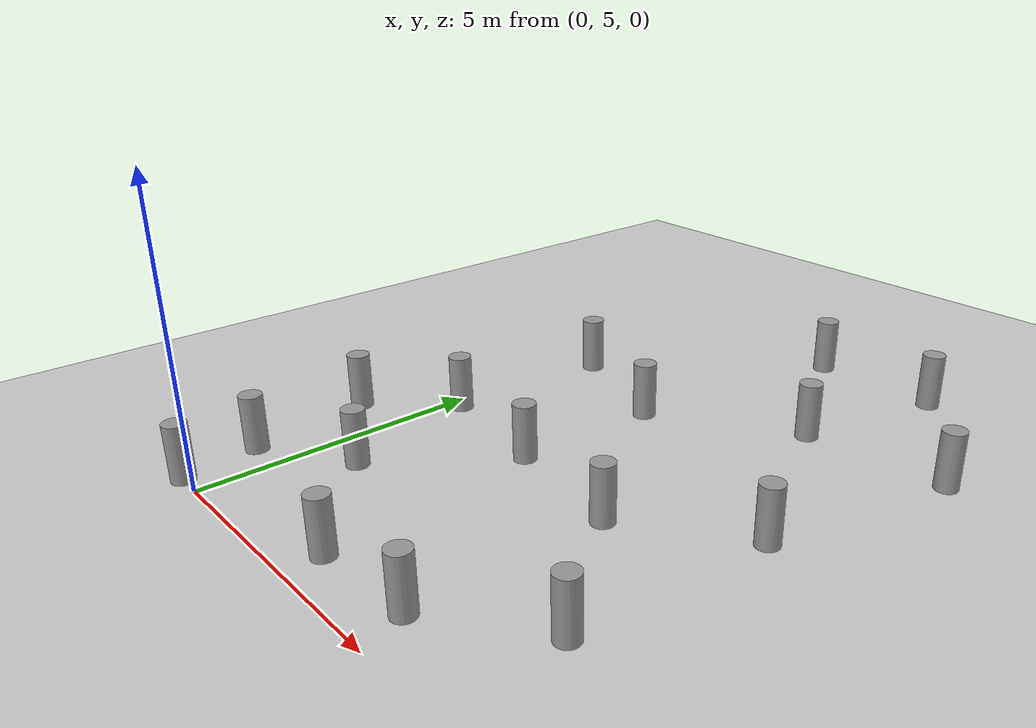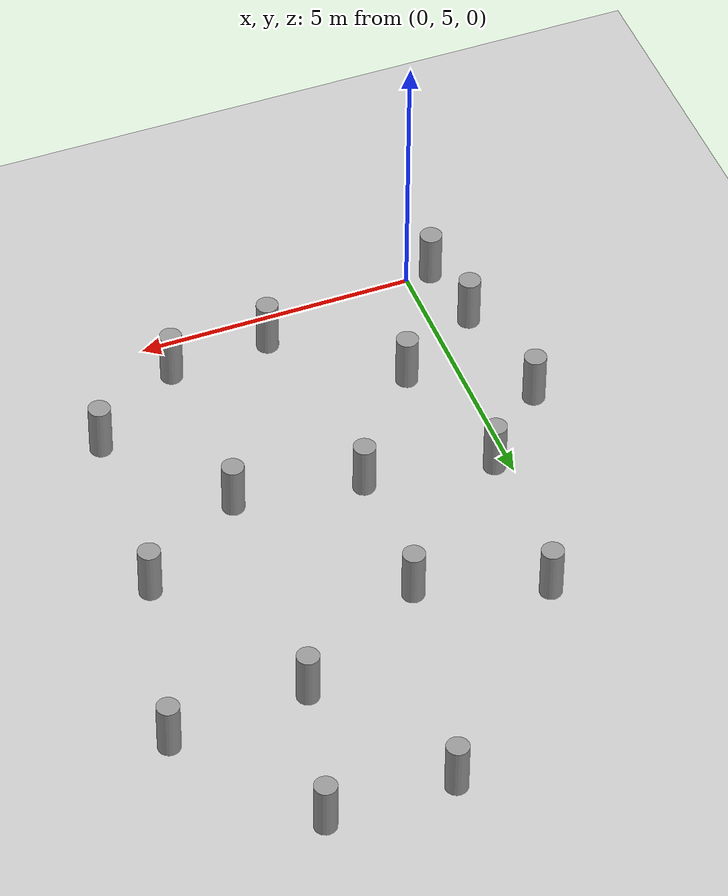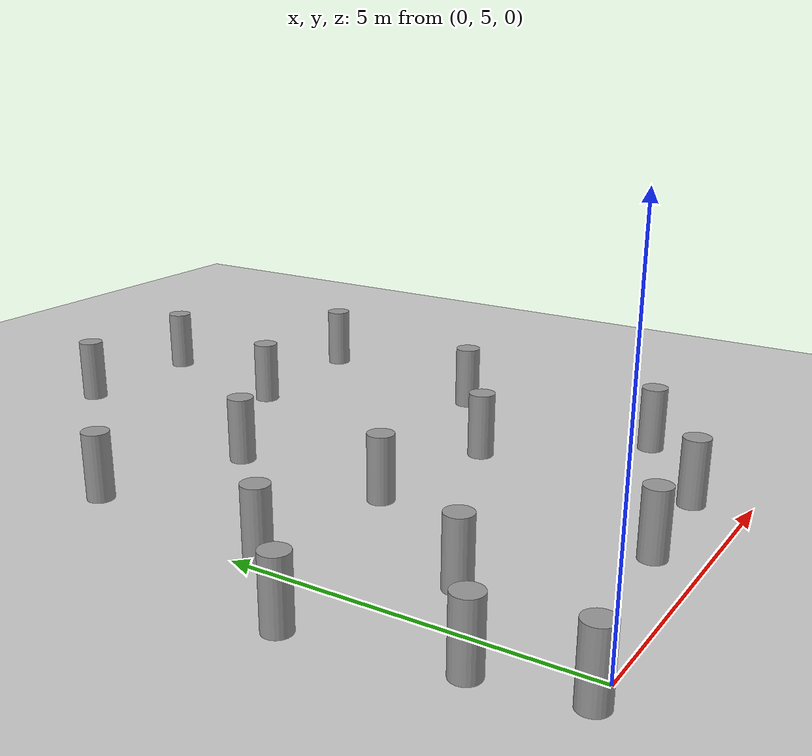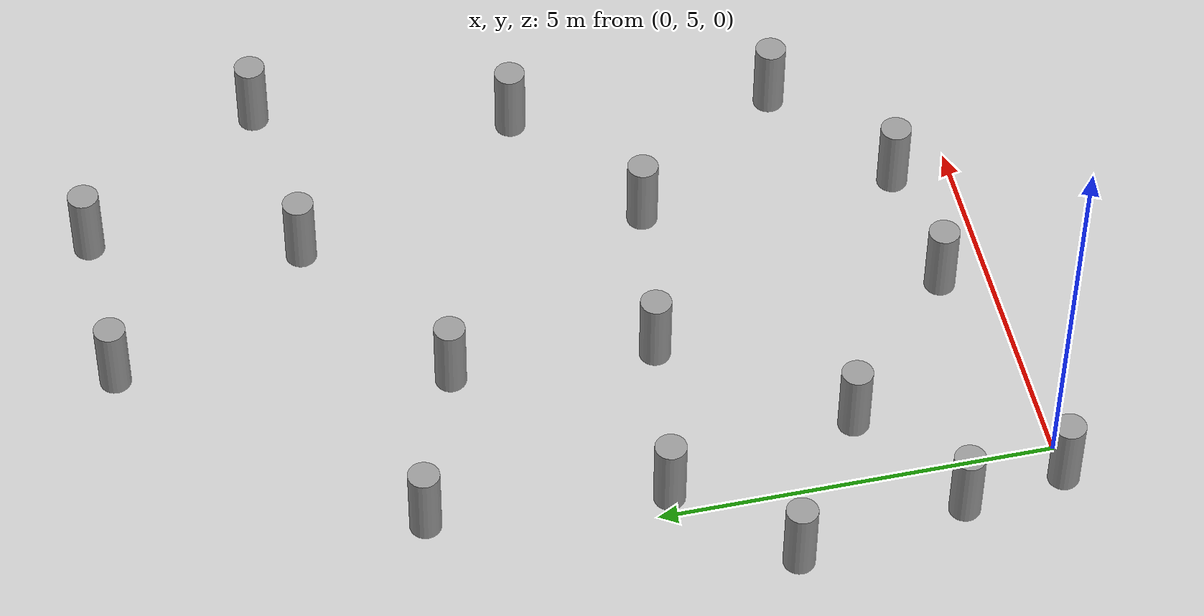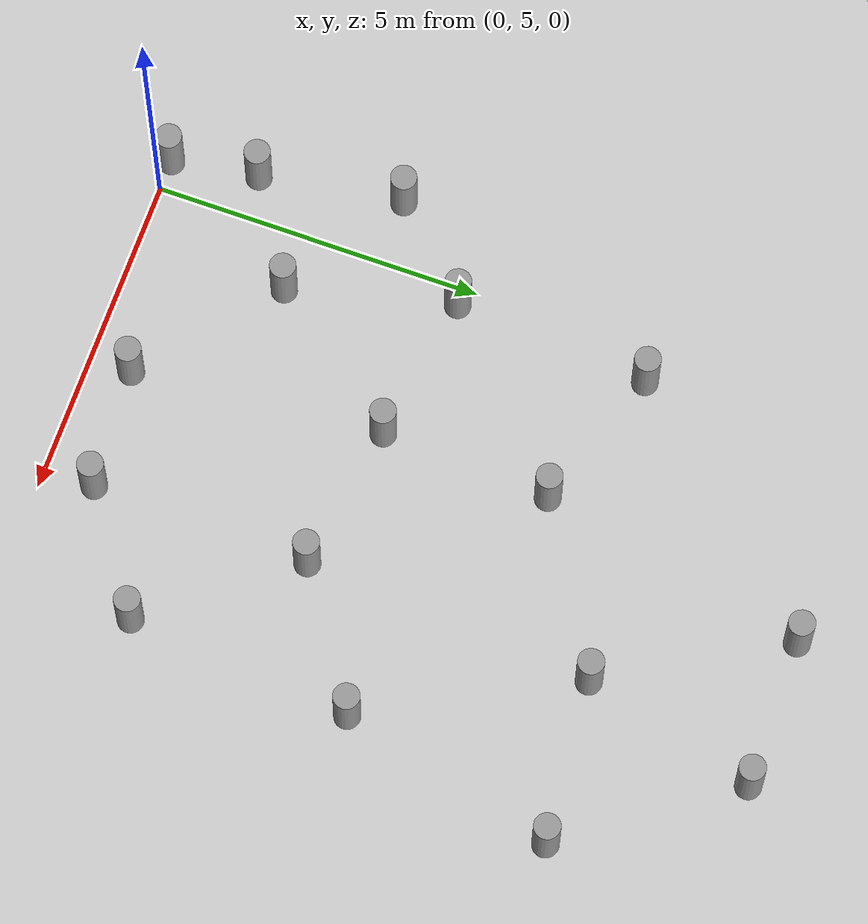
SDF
<sdf version="1.7">
 <world name="default">
  <model name="ground_plane">
   <static>1</static>
   <link name="link">
    <collision name="collision">
     <geometry><plane><normal>0 0 1</normal><size>100 100</size></plane></geometry>
     <surface><friction><ode><mu>100</mu><mu2>50</mu2></ode></friction></surface>
    </collision>
    <visual name="visual">
     <cast_shadows>0</cast_shadows>
     <geometry><plane><normal>0 0 1</normal><size>100 100</size></plane></geometry>
     <material>
      <script><uri>file://media/materials/scripts/gazebo.material</uri><name>Gazebo/Grey</name></script>
     </material>
    </visual>
   </link>
  </model>
  <model name="unit_cylinder_clone_0">
   <pose>4.78695 9.09994 0.499993 0 -0 4e-06</pose>
   <link name="link">
    <inertial>
     <mass>1</mass>
     <inertia><ixx>0.145833</ixx><ixy>0</ixy><ixz>0</ixz><iyy>0.145833</iyy><iyz>0</iyz><izz>0.125</izz></inertia>
    </inertial>
    <collision name="collision">
     <geometry><cylinder><radius>0.19793</radius><length>1</length></cylinder></geometry>
    </collision>
    <visual name="visual">
     <geometry><cylinder><radius>0.19793</radius><length>1</length></cylinder></geometry>
     <material>
      <script><name>Gazebo/Grey</name><uri>file://media/materials/scripts/gazebo.material</uri></script>
     </material>
    </visual>
   </link>
  </model>
  <model name="unit_cylinder_clone_1">
   <pose>2.66479 12.0412 0.499997 0 -0 4e-06</pose>
   <link name="link">
    <inertial>
     <mass>1</mass>
     <inertia><ixx>0.145833</ixx><ixy>0</ixy><ixz>0</ixz><iyy>0.145833</iyy><iyz>0</iyz><izz>0.125</izz></inertia>
    </inertial>
    <collision name="collision">
     <geometry><cylinder><radius>0.19793</radius><length>1</length></cylinder></geometry>
    </collision>
    <visual name="visual">
     <geometry><cylinder><radius>0.19793</radius><length>1</length></cylinder></geometry>
     <material>
      <script><name>Gazebo/Grey</name><uri>file://media/materials/scripts/gazebo.material</uri></script>
     </material>
    </visual>
   </link>
  </model>
  <model name="unit_cylinder_clone_2">
   <pose>5.09572 13.5123 0.499993 0 -0 4e-06</pose>
   <link name="link">
    <inertial>
     <mass>1</mass>
     <inertia><ixx>0.145833</ixx><ixy>0</ixy><ixz>0</ixz><iyy>0.145833</iyy><iyz>0</iyz><izz>0.125</izz></inertia>
    </inertial>
    <collision name="collision">
     <geometry><cylinder><radius>0.19793</radius><length>1</length></cylinder></geometry>
    </collision>
    <visual name="visual">
     <geometry><cylinder><radius>0.19793</radius><length>1</length></cylinder></geometry>
     <material>
      <script><name>Gazebo/Grey</name><uri>file://media/materials/scripts/gazebo.material</uri></script>
     </material>
    </visual>
   </link>
  </model>
  <model name="unit_cylinder_clone_3">
   <pose>3.5408 16.1391 0.499997 0 -0 4e-06</pose>
   <link name="link">
    <inertial>
     <mass>1</mass>
     <inertia><ixx>0.145833</ixx><ixy>0</ixy><ixz>0</ixz><iyy>0.145833</iyy><iyz>0</iyz><izz>0.125</izz></inertia>
    </inertial>
    <collision name="collision">
     <geometry><cylinder><radius>0.19793</radius><length>1</length></cylinder></geometry>
    </collision>
    <visual name="visual">
     <geometry><cylinder><radius>0.19793</radius><length>1</length></cylinder></geometry>
     <material>
      <script><name>Gazebo/Grey</name><uri>file://media/materials/scripts/gazebo.material</uri></script>
     </material>
    </visual>
   </link>
  </model>
  <model name="unit_cylinder_clone_4">
   <pose>0.487119 12.7888 0.499993 0 -0 4e-06</pose>
   <link name="link">
    <inertial>
     <mass>1</mass>
     <inertia><ixx>0.145833</ixx><ixy>0</ixy><ixz>0</ixz><iyy>0.145833</iyy><iyz>0</iyz><izz>0.125</izz></inertia>
    </inertial>
    <collision name="collision">
     <geometry><cylinder><radius>0.19793</radius><length>1</length></cylinder></geometry>
    </collision>
    <visual name="visual">
     <geometry><cylinder><radius>0.19793</radius><length>1</length></cylinder></geometry>
     <material>
      <script><name>Gazebo/Grey</name><uri>file://media/materials/scripts/gazebo.material</uri></script>
     </material>
    </visual>
   </link>
  </model>
  <model name="unit_cylinder_clone_5">
   <pose>0.274245 9.79924 0.499997 0 -0 4e-06</pose>
   <link name="link">
    <inertial>
     <mass>1</mass>
     <inertia><ixx>0.145833</ixx><ixy>0</ixy><ixz>0</ixz><iyy>0.145833</iyy><iyz>0</iyz><izz>0.125</izz></inertia>
    </inertial>
    <collision name="collision">
     <geometry><cylinder><radius>0.19793</radius><length>1</length></cylinder></geometry>
    </collision>
    <visual name="visual">
     <geometry><cylinder><radius>0.19793</radius><length>1</length></cylinder></geometry>
     <material>
      <script><name>Gazebo/Grey</name><uri>file://media/materials/scripts/gazebo.material</uri></script>
     </material>
    </visual>
   </link>
  </model>
  <model name="unit_cylinder_clone_6">
   <pose>-1 8.49556 0.499993 0 -0 4e-06</pose>
   <link name="link">
    <inertial>
     <mass>1</mass>
     <inertia><ixx>0.145833</ixx><ixy>0</ixy><ixz>0</ixz><iyy>0.145833</iyy><iyz>0</iyz><izz>0.125</izz></inertia>
    </inertial>
    <collision name="collision">
     <geometry><cylinder><radius>0.19793</radius><length>1</length></cylinder></geometry>
    </collision>
    <visual name="visual">
     <geometry><cylinder><radius>0.19793</radius><length>1</length></cylinder></geometry>
     <material>
      <script><name>Gazebo/Grey</name><uri>file://media/materials/scripts/gazebo.material</uri></script>
     </material>
    </visual>
   </link>
  </model>
  <model name="unit_cylinder_clone_7">
   <pose>6.74765 10.429 0.499997 0 -0 4e-06</pose>
   <link name="link">
    <inertial>
     <mass>1</mass>
     <inertia><ixx>0.145833</ixx><ixy>0</ixy><ixz>0</ixz><iyy>0.145833</iyy><iyz>0</iyz><izz>0.125</izz></inertia>
    </inertial>
    <collision name="collision">
     <geometry><cylinder><radius>0.19793</radius><length>1</length></cylinder></geometry>
    </collision>
    <visual name="visual">
     <geometry><cylinder><radius>0.19793</radius><length>1</length></cylinder></geometry>
     <material>
      <script><name>Gazebo/Grey</name><uri>file://media/materials/scripts/gazebo.material</uri></script>
     </material>
    </visual>
   </link>
  </model>
  <model name="unit_cylinder_clone_8">
   <pose>7.57568 13.7201 0.499993 0 -0 4e-06</pose>
   <link name="link">
    <inertial>
     <mass>1</mass>
     <inertia><ixx>0.145833</ixx><ixy>0</ixy><ixz>0</ixz><iyy>0.145833</iyy><iyz>0</iyz><izz>0.125</izz></inertia>
    </inertial>
    <collision name="collision">
     <geometry><cylinder><radius>0.19793</radius><length>1</length></cylinder></geometry>
    </collision>
    <visual name="visual">
     <geometry><cylinder><radius>0.19793</radius><length>1</length></cylinder></geometry>
     <material>
      <script><name>Gazebo/Grey</name><uri>file://media/materials/scripts/gazebo.material</uri></script>
     </material>
    </visual>
   </link>
  </model>
  <model name="unit_cylinder_clone_23">
   <pose>-0.451325 5.01047 0.499997 0 -0 3e-06</pose>
   <link name="link">
    <inertial>
     <mass>1</mass>
     <inertia><ixx>0.145833</ixx><ixy>0</ixy><ixz>0</ixz><iyy>0.145833</iyy><iyz>0</iyz><izz>0.125</izz></inertia>
    </inertial>
    <collision name="collision">
     <geometry><cylinder><radius>0.19793</radius><length>1</length></cylinder></geometry>
    </collision>
    <visual name="visual">
     <geometry><cylinder><radius>0.19793</radius><length>1</length></cylinder></geometry>
     <material>
      <script><name>Gazebo/Grey</name><uri>file://media/materials/scripts/gazebo.material</uri></script>
     </material>
    </visual>
   </link>
  </model>
  <model name="unit_cylinder_clone_24">
   <pose>-0.657877 6.32538 0.499997 0 -0 3e-06</pose>
   <link name="link">
    <inertial>
     <mass>1</mass>
     <inertia><ixx>0.145833</ixx><ixy>0</ixy><ixz>0</ixz><iyy>0.145833</iyy><iyz>0</iyz><izz>0.125</izz></inertia>
    </inertial>
    <collision name="collision">
     <geometry><cylinder><radius>0.19793</radius><length>1</length></cylinder></geometry>
    </collision>
    <visual name="visual">
     <geometry><cylinder><radius>0.19793</radius><length>1</length></cylinder></geometry>
     <material>
      <script><name>Gazebo/Grey</name><uri>file://media/materials/scripts/gazebo.material</uri></script>
     </material>
    </visual>
   </link>
  </model>
  <model name="unit_cylinder_clone_25">
   <pose>4.7253 5.7723 0.499993 0 -0 3e-06</pose>
   <link name="link">
    <inertial>
     <mass>1</mass>
     <inertia><ixx>0.145833</ixx><ixy>0</ixy><ixz>0</ixz><iyy>0.145833</iyy><iyz>0</iyz><izz>0.125</izz></inertia>
    </inertial>
    <collision name="collision">
     <geometry><cylinder><radius>0.19793</radius><length>1</length></cylinder></geometry>
    </collision>
    <visual name="visual">
     <geometry><cylinder><radius>0.19793</radius><length>1</length></cylinder></geometry>
     <material>
      <script><name>Gazebo/Grey</name><uri>file://media/materials/scripts/gazebo.material</uri></script>
     </material>
    </visual>
   </link>
  </model>
  <model name="unit_cylinder_clone_26">
   <pose>6.44838 7 0.499993 0 -0 2e-06</pose>
   <link name="link">
    <inertial>
     <mass>1</mass>
     <inertia><ixx>0.145833</ixx><ixy>0</ixy><ixz>0</ixz><iyy>0.145833</iyy><iyz>0</iyz><izz>0.125</izz></inertia>
    </inertial>
    <collision name="collision">
     <geometry><cylinder><radius>0.19793</radius><length>1</length></cylinder></geometry>
    </collision>
    <visual name="visual">
     <geometry><cylinder><radius>0.19793</radius><length>1</length></cylinder></geometry>
     <material>
      <script><name>Gazebo/Grey</name><uri>file://media/materials/scripts/gazebo.material</uri></script>
     </material>
    </visual>
   </link>
  </model>
  <model name="unit_cylinder_clone_27">
   <pose>2.53815 9.45269 0.499997 0 -0 2e-06</pose>
   <link name="link">
    <inertial>
     <mass>1</mass>
     <inertia><ixx>0.145833</ixx><ixy>0</ixy><ixz>0</ixz><iyy>0.145833</iyy><iyz>0</iyz><izz>0.125</izz></inertia>
    </inertial>
    <collision name="collision">
     <geometry><cylinder><radius>0.19793</radius><length>1</length></cylinder></geometry>
    </collision>
    <visual name="visual">
     <geometry><cylinder><radius>0.19793</radius><length>1</length></cylinder></geometry>
     <material>
      <script><name>Gazebo/Grey</name><uri>file://media/materials/scripts/gazebo.material</uri></script>
     </material>
    </visual>
   </link>
  </model>
  <model name="unit_cylinder_clone_28">
   <pose>5.79612 16.1516 0.499993 0 -0 2e-06</pose>
   <link name="link">
    <inertial>
     <mass>1</mass>
     <inertia><ixx>0.145833</ixx><ixy>0</ixy><ixz>0</ixz><iyy>0.145833</iyy><iyz>0</iyz><izz>0.125</izz></inertia>
    </inertial>
    <collision name="collision">
     <geometry><cylinder><radius>0.19793</radius><length>1</length></cylinder></geometry>
    </collision>
    <visual name="visual">
     <geometry><cylinder><radius>0.19793</radius><length>1</length></cylinder></geometry>
     <material>
      <script><name>Gazebo/Grey</name><uri>file://media/materials/scripts/gazebo.material</uri></script>
     </material>
    </visual>
   </link>
  </model>
  <model name="unit_cylinder_clone">
   <pose>0.908682 7.30719 0.499997 0 -0 2e-06</pose>
   <link name="link">
    <inertial>
     <mass>1</mass>
     <inertia><ixx>0.145833</ixx><ixy>0</ixy><ixz>0</ixz><iyy>0.145833</iyy><iyz>0</iyz><izz>0.125</izz></inertia>
    </inertial>
    <collision name="collision">
     <geometry><cylinder><radius>0.19793</radius><length>1</length></cylinder></geometry>
    </collision>
    <visual name="visual">
     <geometry><cylinder><radius>0.19793</radius><length>1</length></cylinder></geometry>
     <material>
      <script><name>Gazebo/Grey</name><uri>file://media/materials/scripts/gazebo.material</uri></script>
     </material>
    </visual>
   </link>
  </model>
  <model name="unit_cylinder_clone_clone">
   <pose>2.88935 5.6457 0.499993 0 -0 2e-06</pose>
   <link name="link">
    <inertial>
     <mass>1</mass>
     <inertia><ixx>0.145833</ixx><ixy>0</ixy><ixz>0</ixz><iyy>0.145833</iyy><iyz>0</iyz><izz>0.125</izz></inertia>
    </inertial>
    <collision name="collision">
     <geometry><cylinder><radius>0.19793</radius><length>1</length></cylinder></geometry>
    </collision>
    <visual name="visual">
     <geometry><cylinder><radius>0.19793</radius><length>1</length></cylinder></geometry>
     <material>
      <script><name>Gazebo/Grey</name><uri>file://media/materials/scripts/gazebo.material</uri></script>
     </material>
    </visual>
   </link>
  </model>
 </world>
</sdf>
